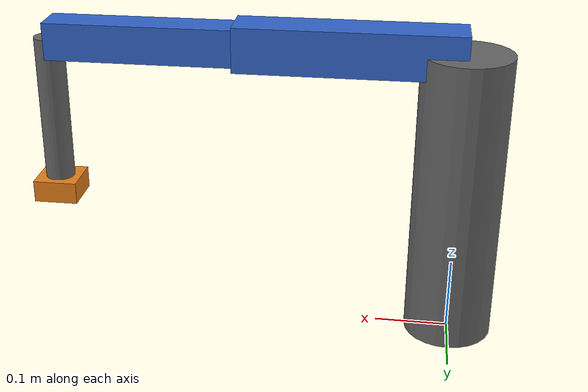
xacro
<?xml version="1.0"?>
<robot name="scara" xmlns:xacro="http://www.ros.org/wiki/xacro">
  <material name="grey">   <color rgba="0.4 0.4 0.4 1"/></material>
  <material name="blue">   <color rgba="0.2 0.4 0.8 1"/></material>
  <material name="orange"> <color rgba="0.9 0.5 0.1 1"/></material>

  <link name="base_link">
    <visual><origin xyz="0 0 0.2"/><geometry><cylinder radius="0.06" length="0.4"/></geometry><material name="grey"/></visual>
    <collision><origin xyz="0 0 0.2"/><geometry><cylinder radius="0.06" length="0.4"/></geometry></collision>
    <inertial><origin xyz="0 0 0.2"/><mass value="2.0"/><inertia ixx="0.03" iyy="0.03" izz="0.01" ixy="0" ixz="0" iyz="0"/></inertial>
  </link>

  <joint name="joint1" type="revolute">
    <parent link="base_link"/><child link="link1"/>
    <origin xyz="0 0 0.4"/><axis xyz="0 0 1"/>
    <limit lower="-3.14" upper="3.14" effort="100" velocity="2.0"/>
  </joint>
  <link name="link1">
    <visual><origin xyz="0.15 0 0"/><geometry><box size="0.3 0.06 0.06"/></geometry><material name="blue"/></visual>
    <collision><origin xyz="0.15 0 0"/><geometry><box size="0.3 0.06 0.06"/></geometry></collision>
    <inertial><origin xyz="0.15 0 0"/><mass value="1.0"/><inertia ixx="0.005" iyy="0.01" izz="0.01" ixy="0" ixz="0" iyz="0"/></inertial>
  </link>

  <joint name="joint2" type="revolute">
    <parent link="link1"/><child link="link2"/>
    <origin xyz="0.3 0 0"/><axis xyz="0 0 1"/>
    <limit lower="-2.5" upper="2.5" effort="100" velocity="2.0"/>
  </joint>
  <link name="link2">
    <visual><origin xyz="0.125 0 0"/><geometry><box size="0.25 0.05 0.05"/></geometry><material name="blue"/></visual>
    <collision><origin xyz="0.125 0 0"/><geometry><box size="0.25 0.05 0.05"/></geometry></collision>
    <inertial><origin xyz="0.125 0 0"/><mass value="0.8"/><inertia ixx="0.003" iyy="0.006" izz="0.006" ixy="0" ixz="0" iyz="0"/></inertial>
  </link>

  <joint name="joint3" type="prismatic">
    <parent link="link2"/><child link="link3"/>
    <origin xyz="0.25 0 0"/><axis xyz="0 0 1"/>
    <limit lower="-0.15" upper="0.0" effort="100" velocity="0.5"/>
  </joint>
  <link name="link3">
    <visual><origin xyz="0 0 -0.1"/><geometry><cylinder radius="0.02" length="0.2"/></geometry><material name="grey"/></visual>
    <collision><origin xyz="0 0 -0.1"/><geometry><cylinder radius="0.02" length="0.2"/></geometry></collision>
    <inertial><origin xyz="0 0 -0.1"/><mass value="0.3"/><inertia ixx="0.001" iyy="0.001" izz="0.0005" ixy="0" ixz="0" iyz="0"/></inertial>
  </link>

  <joint name="joint4" type="revolute">
    <parent link="link3"/><child link="link4"/>
    <origin xyz="0 0 -0.2"/><axis xyz="0 0 1"/>
    <limit lower="-3.14" upper="3.14" effort="50" velocity="2.0"/>
  </joint>
  <link name="link4">
    <visual><origin xyz="0 0 -0.015"/><geometry><box size="0.06 0.06 0.03"/></geometry><material name="orange"/></visual>
    <collision><origin xyz="0 0 -0.015"/><geometry><box size="0.06 0.06 0.03"/></geometry></collision>
    <inertial><origin xyz="0 0 -0.015"/><mass value="0.1"/><inertia ixx="0.0001" iyy="0.0001" izz="0.0001" ixy="0" ixz="0" iyz="0"/></inertial>
  </link>

  <ros2_control name="GazeboSimSystem" type="system">
    <hardware><plugin>gz_ros2_control/GazeboSimSystem</plugin></hardware>
    <joint name="joint1"><command_interface name="position"/><state_interface name="position"/><state_interface name="velocity"/></joint>
    <joint name="joint2"><command_interface name="position"/><state_interface name="position"/><state_interface name="velocity"/></joint>
    <joint name="joint3"><command_interface name="position"/><state_interface name="position"/><state_interface name="velocity"/></joint>
    <joint name="joint4"><command_interface name="position"/><state_interface name="position"/><state_interface name="velocity"/></joint>
  </ros2_control>

  <gazebo>
    <plugin filename="libgz_ros2_control-system.so" name="gz_ros2_control::GazeboSimROS2ControlPlugin">
      <parameters>$(find scara_sim)/config/scara_controllers.yaml</parameters>
    </plugin>
  </gazebo>
</robot>
